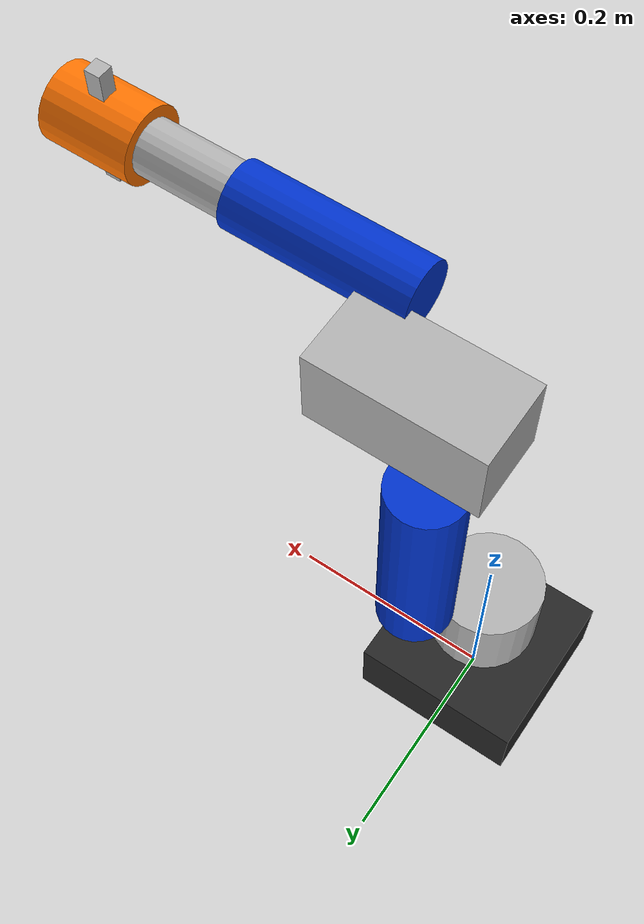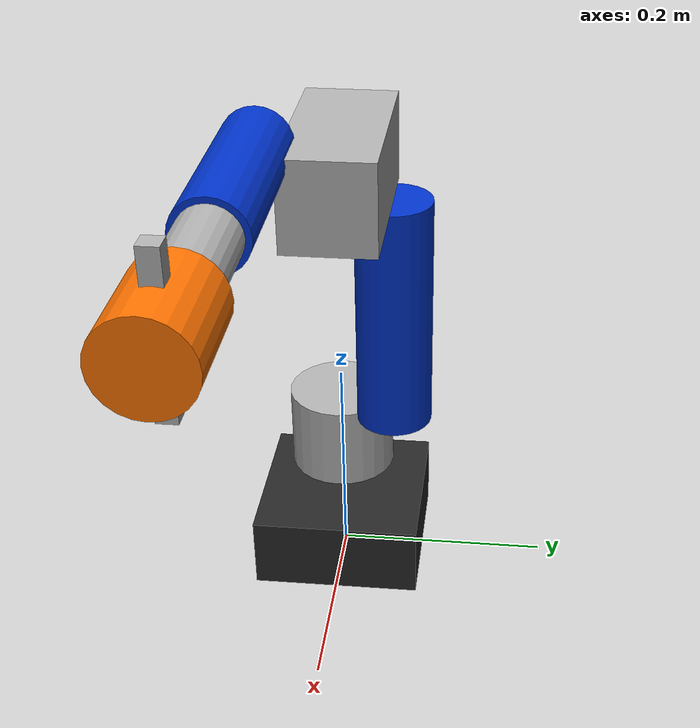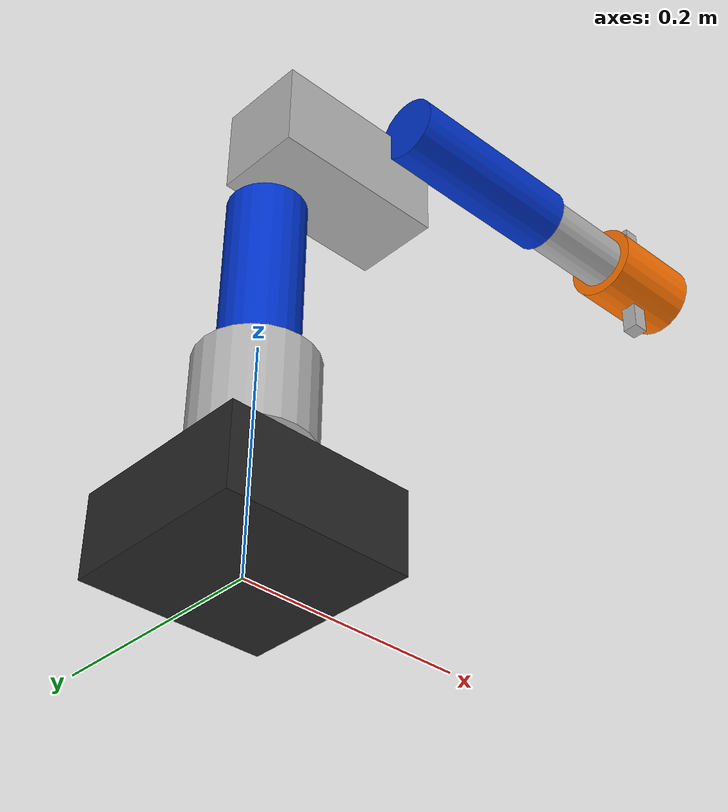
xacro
<?xml version="1.0"?>
<robot xmlns:xacro="http://www.ros.org/wiki/xacro" name="robot_manipulator">

  <!--
    Lightweight URDF only for MoveIt Setup Assistant.
    No STL visual meshes.
    No STL collision meshes.
    Kinematics are copied from the real robot.urdf.xacro.
  -->

  <material name="dark_gray">
    <color rgba="0.15 0.15 0.15 1.0"/>
  </material>

  <material name="light_gray">
    <color rgba="0.7 0.7 0.7 1.0"/>
  </material>

  <material name="blue">
    <color rgba="0.0 0.2 0.8 1.0"/>
  </material>

  <material name="orange">
    <color rgba="1.0 0.45 0.0 1.0"/>
  </material>

  <xacro:macro name="default_inertial" params="mass">
    <inertial>
      <origin xyz="0 0 0" rpy="0 0 0"/>
      <mass value="${mass}"/>
      <inertia
        ixx="0.01" ixy="0.0" ixz="0.0"
        iyy="0.01" iyz="0.0"
        izz="0.01"/>
    </inertial>
  </xacro:macro>

  <!-- ===================== BASE ===================== -->

  <link name="world"/>

  <joint name="world_to_base_fixed" type="fixed">
    <parent link="world"/>
    <child link="base_link"/>
    <origin xyz="0 0 0" rpy="0 0 0"/>
  </joint>

  <link name="base_link">
    <visual>
      <origin xyz="0 0 0.035" rpy="0 0 0"/>
      <geometry>
        <box size="0.16 0.16 0.07"/>
      </geometry>
      <material name="dark_gray"/>
    </visual>
    <collision>
      <origin xyz="0 0 0.035" rpy="0 0 0"/>
      <geometry>
        <box size="0.16 0.16 0.07"/>
      </geometry>
    </collision>
    <xacro:default_inertial mass="2.0"/>
  </link>

  <!-- ===================== LINKS ===================== -->

  <link name="link_1">
    <visual>
      <origin xyz="0 0 0.04" rpy="0 0 0"/>
      <geometry>
        <cylinder radius="0.05" length="0.08"/>
      </geometry>
      <material name="light_gray"/>
    </visual>
    <collision>
      <origin xyz="0 0 0.04" rpy="0 0 0"/>
      <geometry>
        <cylinder radius="0.05" length="0.08"/>
      </geometry>
    </collision>
    <xacro:default_inertial mass="1.0"/>
  </link>

  <link name="link_2">
    <visual>
      <origin xyz="0 0.11 0" rpy="1.5708 0 0"/>
      <geometry>
        <cylinder radius="0.035" length="0.22"/>
      </geometry>
      <material name="blue"/>
    </visual>
    <collision>
      <origin xyz="0 0.11 0" rpy="1.5708 0 0"/>
      <geometry>
        <cylinder radius="0.035" length="0.22"/>
      </geometry>
    </collision>
    <xacro:default_inertial mass="1.0"/>
  </link>

  <link name="link_3">
    <visual>
      <origin xyz="0.035 0.04 0" rpy="0 0 0"/>
      <geometry>
        <box size="0.16 0.08 0.08"/>
      </geometry>
      <material name="light_gray"/>
    </visual>
    <collision>
      <origin xyz="0.035 0.04 0" rpy="0 0 0"/>
      <geometry>
        <box size="0.16 0.08 0.08"/>
      </geometry>
    </collision>
    <xacro:default_inertial mass="1.0"/>
  </link>

  <link name="link_4">
    <visual>
      <origin xyz="0 0 0.086" rpy="0 0 0"/>
      <geometry>
        <cylinder radius="0.03" length="0.172"/>
      </geometry>
      <material name="blue"/>
    </visual>
    <collision>
      <origin xyz="0 0 0.086" rpy="0 0 0"/>
      <geometry>
        <cylinder radius="0.03" length="0.172"/>
      </geometry>
    </collision>
    <xacro:default_inertial mass="0.8"/>
  </link>

  <link name="link_5">
    <visual>
      <origin xyz="0 0.043 0" rpy="1.5708 0 0"/>
      <geometry>
        <cylinder radius="0.025" length="0.086"/>
      </geometry>
      <material name="light_gray"/>
    </visual>
    <collision>
      <origin xyz="0 0.043 0" rpy="1.5708 0 0"/>
      <geometry>
        <cylinder radius="0.025" length="0.086"/>
      </geometry>
    </collision>
    <xacro:default_inertial mass="0.8"/>
  </link>

  <link name="link_6">
    <visual>
      <origin xyz="0 0 0.043" rpy="0 0 0"/>
      <geometry>
        <cylinder radius="0.035" length="0.0867"/>
      </geometry>
      <material name="orange"/>
    </visual>
    <collision>
      <origin xyz="0 0 0.043" rpy="0 0 0"/>
      <geometry>
        <cylinder radius="0.035" length="0.0867"/>
      </geometry>
    </collision>
    <xacro:default_inertial mass="0.5"/>
  </link>

  <link name="tool0"/>

  <!-- ===================== ARM JOINTS ===================== -->

  <joint name="joint_1" type="revolute">
    <parent link="base_link"/>
    <child link="link_1"/>
    <origin xyz="0 0 0.1038" rpy="0 0 3.1416"/>
    <axis xyz="0 0 1"/>
    <limit lower="-3.14" upper="3.14" effort="30" velocity="1.0"/>
    <dynamics damping="0.0" friction="0.0"/>
  </joint>

  <joint name="joint_2" type="revolute">
    <parent link="link_1"/>
    <child link="link_2"/>
    <origin xyz="-0.04375 -0.0558 0.08" rpy="1.5708 0 0"/>
    <axis xyz="0 0 1"/>
    <limit lower="-0.7854" upper="1.5708" effort="30" velocity="1.0"/>
    <dynamics damping="0.0" friction="0.0"/>
  </joint>

  <joint name="joint_3" type="revolute">
    <parent link="link_2"/>
    <child link="link_3"/>
    <origin xyz="0 0.22 -0.04" rpy="0 3.1416 0"/>
    <axis xyz="0 0 1"/>
    <limit lower="-1.5708" upper="1.5708" effort="30" velocity="1.0"/>
    <dynamics damping="0.0" friction="0.0"/>
  </joint>

  <joint name="joint_4" type="revolute">
    <parent link="link_3"/>
    <child link="link_4"/>
    <origin xyz="0.07 0.075 0.06" rpy="0 1.5708 0"/>
    <axis xyz="0 0 1"/>
    <limit lower="-3.1416" upper="3.1416" effort="20" velocity="1.0"/>
    <dynamics damping="0.0" friction="0.0"/>
  </joint>

  <joint name="joint_5" type="revolute">
    <parent link="link_4"/>
    <child link="link_5"/>
    <origin xyz="0 0 0.172" rpy="1.5708 0 -1.5708"/>
    <axis xyz="0 0 1"/>
    <limit lower="-2.0944" upper="2.0944" effort="10" velocity="1.0"/>
    <dynamics damping="0.0" friction="0.0"/>
  </joint>

  <joint name="joint_6" type="revolute">
    <parent link="link_5"/>
    <child link="link_6"/>
    <origin xyz="0 0.08593 0" rpy="-1.5708 0 0"/>
    <axis xyz="0 0 1"/>
    <limit lower="-3.14" upper="3.14" effort="30" velocity="1.0"/>
    <dynamics damping="0.0" friction="0.0"/>
  </joint>

  <joint name="tool0_fixed_joint" type="fixed">
    <parent link="link_6"/>
    <child link="tool0"/>
    <origin xyz="0 0 0.0867" rpy="0 0 0"/>
  </joint>

  <!-- ===================== LIGHT GRIPPER ===================== -->

  <link name="left_finger">
    <visual>
      <origin xyz="0 0 0.03" rpy="0 0 0"/>
      <geometry>
        <box size="0.015 0.015 0.06"/>
      </geometry>
      <material name="light_gray"/>
    </visual>
    <collision>
      <origin xyz="0 0 0.03" rpy="0 0 0"/>
      <geometry>
        <box size="0.015 0.015 0.06"/>
      </geometry>
    </collision>
    <xacro:default_inertial mass="0.1"/>
  </link>

  <link name="right_finger">
    <visual>
      <origin xyz="0 0 0.03" rpy="0 0 0"/>
      <geometry>
        <box size="0.015 0.015 0.06"/>
      </geometry>
      <material name="light_gray"/>
    </visual>
    <collision>
      <origin xyz="0 0 0.03" rpy="0 0 0"/>
      <geometry>
        <box size="0.015 0.015 0.06"/>
      </geometry>
    </collision>
    <xacro:default_inertial mass="0.1"/>
  </link>

  <joint name="left_finger_joint" type="prismatic">
    <parent link="link_6"/>
    <child link="left_finger"/>
    <origin xyz="0 0 0.0435" rpy="1.5708 0 1.5708"/>
    <axis xyz="0 0 1"/>
    <limit lower="0.0" upper="0.025" effort="5" velocity="0.05"/>
    <dynamics damping="0.0" friction="0.0"/>
  </joint>

  <joint name="right_finger_joint" type="prismatic">
    <parent link="link_6"/>
    <child link="right_finger"/>
    <origin xyz="0 0 0.0435" rpy="1.5708 0 -1.5708"/>
    <axis xyz="0 0 1"/>
    <limit lower="0.0" upper="0.025" effort="5" velocity="0.05"/>
    <mimic joint="left_finger_joint" multiplier="1.0" offset="0.0"/>
    <dynamics damping="0.0" friction="0.0"/>
  </joint>

</robot>
